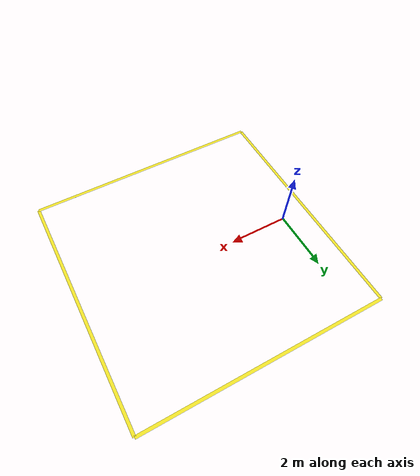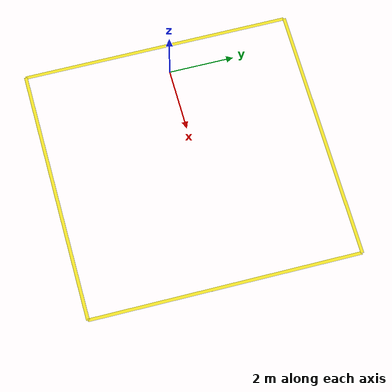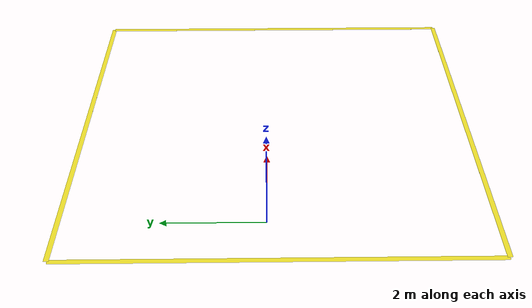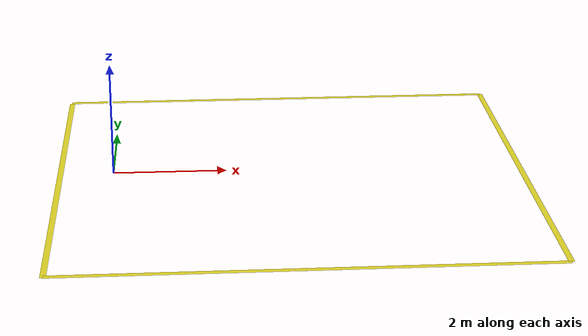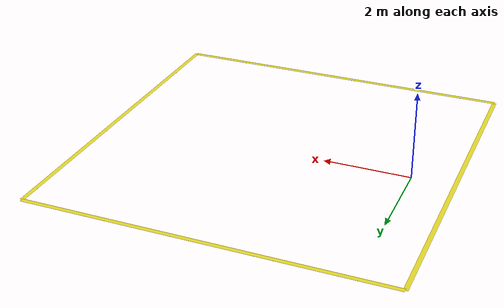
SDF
<?xml version="1.0"?>
<sdf version="1.4">
<world name="racecar_walker">

  <scene>
    <ambient>0.5 0.5 0.5 1.0</ambient>
    <shadows>0</shadows>
  </scene>

  <include>
    <uri>model://sun</uri>
    <pose>0.0 0.0 15.0 0 0 0</pose>
    <cast_shadows>false</cast_shadows>
    <attenuation>
      <constant>0.5</constant>
      <linear>0.01</linear>
      <quadratic>0.0</quadratic>
      <range>100</range>
    </attenuation>
  </include>

    <gravity>0 0 -9.8</gravity>
    <magnetic_field>6e-06 2.3e-05 -4.2e-05</magnetic_field>
    <atmosphere type='adiabatic'/>
    <physics name='default_physics' default='0' type='ode'>
      <max_step_size>0.001</max_step_size>
      <real_time_factor>1</real_time_factor>
      <real_time_update_rate>1000</real_time_update_rate>
    </physics>
    <scene>
      <ambient>0.4 0.4 0.4 1</ambient>
      <background>0.7 0.7 0.7 1</background>
      <shadows>1</shadows>
    </scene>
    <spherical_coordinates>
      <surface_model>EARTH_WGS84</surface_model>
      <latitude_deg>0</latitude_deg>
      <longitude_deg>0</longitude_deg>
      <elevation>0</elevation>
      <heading_deg>0</heading_deg>
    </spherical_coordinates>

    <model name='yellow line_1'>
      <static>1</static>
      <link name='link_ground'>
        <collision name='collision'>
          <geometry>
            <plane>
              <normal>0 0 1</normal>
              <size>0.1 8.2</size>
            </plane>
          </geometry>
          <surface>
            <friction>
              <ode>
                <mu>100</mu>
                <mu2>50</mu2>
              </ode>
              <torsional>
                <ode/>
              </torsional>
            </friction>
            <contact>
              <ode/>
            </contact>
            <bounce/>
          </surface>
          <max_contacts>10</max_contacts>
        </collision>
        <visual name='visual_ground'>
          <cast_shadows>0</cast_shadows>
          <geometry>
            <plane>
              <normal>0 0 1</normal>
              <size>0.1 8.2</size>
            </plane>
          </geometry>
          <material>
            <script>
              <uri>file://media/materials/scripts/gazebo.material</uri>
              <name>Gazebo/Yellow</name>
            </script>
          </material>
        </visual>
        <self_collide>0</self_collide>
        <kinematic>0</kinematic>
        <gravity>1</gravity>
      </link>
      <pose frame=''>-0.94783 -0.211502 0 0 -0 0</pose>
    </model>

    <model name='yellow line_2'>
      <static>1</static>
      <link name='link_ground'>
        <collision name='collision'>
          <geometry>
            <plane>
              <normal>0 0 1</normal>
              <size>0.1 8.2</size>
            </plane>
          </geometry>
          <surface>
            <friction>
              <ode>
                <mu>100</mu>
                <mu2>50</mu2>
              </ode>
              <torsional>
                <ode/>
              </torsional>
            </friction>
            <contact>
              <ode/>
            </contact>
            <bounce/>
          </surface>
          <max_contacts>10</max_contacts>
        </collision>
        <visual name='visual_ground'>
          <cast_shadows>0</cast_shadows>
          <geometry>
            <plane>
              <normal>0 0 1</normal>
              <size>0.1 8.2</size>
            </plane>
          </geometry>
          <material>
            <script>
              <uri>file://media/materials/scripts/gazebo.material</uri>
              <name>Gazebo/Yellow</name>
            </script>
          </material>
        </visual>
        <self_collide>0</self_collide>
        <kinematic>0</kinematic>
        <gravity>1</gravity>
      </link>
      <pose frame=''>3.1527 -4.311502 0 0 -0 1.57</pose>
    </model>

    <model name='yellow line_3'>
      <static>1</static>
      <link name='link_ground'>
        <collision name='collision'>
          <geometry>
            <plane>
              <normal>0 0 1</normal>
              <size>0.1 8.2</size>
            </plane>
          </geometry>
          <surface>
            <friction>
              <ode>
                <mu>100</mu>
                <mu2>50</mu2>
              </ode>
              <torsional>
                <ode/>
              </torsional>
            </friction>
            <contact>
              <ode/>
            </contact>
            <bounce/>
          </surface>
          <max_contacts>10</max_contacts>
        </collision>
        <visual name='visual_ground'>
          <cast_shadows>0</cast_shadows>
          <geometry>
            <plane>
              <normal>0 0 1</normal>
              <size>0.1 8.2</size>
            </plane>
          </geometry>
          <material>
            <script>
              <uri>file://media/materials/scripts/gazebo.material</uri>
              <name>Gazebo/Yellow</name>
            </script>
          </material>
        </visual>
        <self_collide>0</self_collide>
        <kinematic>0</kinematic>
        <gravity>1</gravity>
      </link>
      <pose frame=''>3.1527 3.9 0 0 0 1.57</pose>
    </model>

    <model name='yellow line_4'>
      <static>1</static>
      <link name='link_ground'>
        <collision name='collision'>
          <geometry>
            <plane>
              <normal>0 0 1</normal>
              <size>0.1 8.2</size>
            </plane>
          </geometry>
          <surface>
            <friction>
              <ode>
                <mu>100</mu>
                <mu2>50</mu2>
              </ode>
              <torsional>
                <ode/>
              </torsional>
            </friction>
            <contact>
              <ode/>
            </contact>
            <bounce/>
          </surface>
          <max_contacts>10</max_contacts>
        </collision>
        <visual name='visual_ground'>
          <cast_shadows>0</cast_shadows>
          <geometry>
            <plane>
              <normal>0 0 1</normal>
              <size>0.1 8.2</size>
            </plane>
          </geometry>
          <material>
            <script>
              <uri>file://media/materials/scripts/gazebo.material</uri>
              <name>Gazebo/Yellow</name>
            </script>
          </material>
        </visual>
        <self_collide>0</self_collide>
        <kinematic>0</kinematic>
        <gravity>1</gravity>
      </link>
      <pose frame=''>7.2517 -0.211502 0 0 -0 0</pose>
    </model>

</world>
</sdf>
